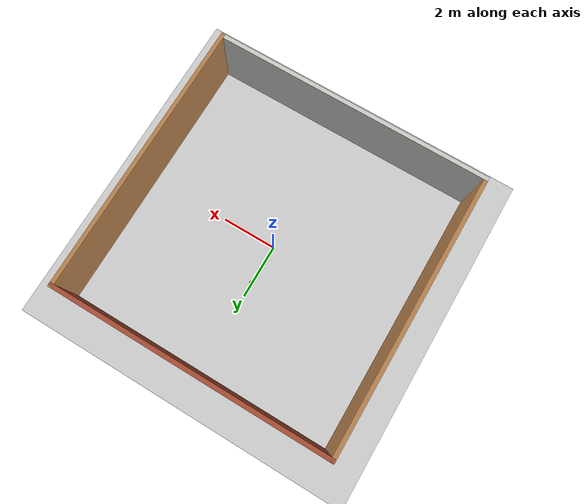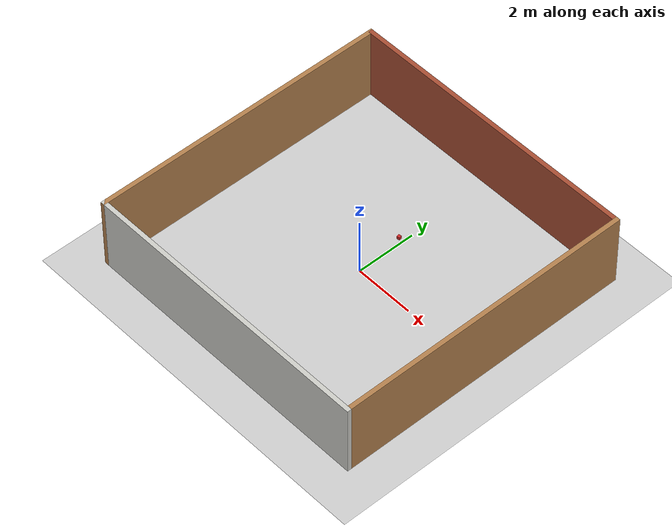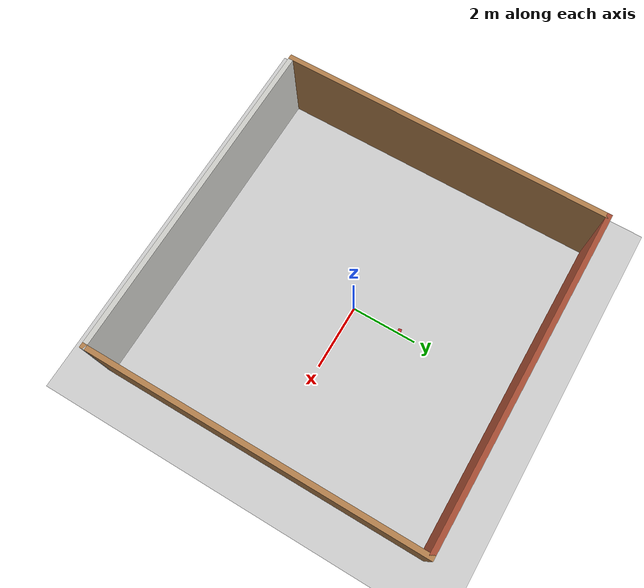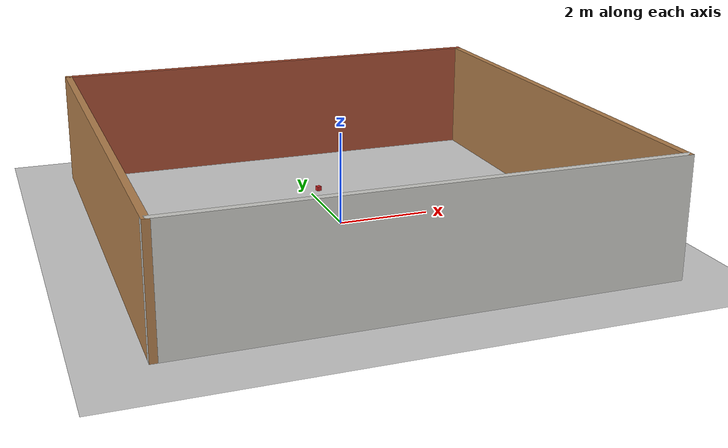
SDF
<?xml version="1.0"?>
<sdf version="1.6">

  <world name="camera_with_ros_plugin">

    <!-- Define the physics engine -->
    <physics name="default_physics" type="ode">
      <max_step_size>0.001</max_step_size>
      <real_time_factor>1</real_time_factor>
      <real_time_update_rate>1000</real_time_update_rate>
    </physics>

    <!-- Include a ground plane -->
    <include>
      <uri>model://ground_plane</uri>
    </include>

    <!-- Include a sun for lighting -->
    <include>
      <uri>model://sun</uri>
    </include>

    <!-- Include your walls model -->
    <include>
      <uri>model://walls</uri>
      <pose>0 0 0 0 0 0</pose> <!-- Adjust position and orientation as needed -->
    </include>

    <!-- Define a camera with libgazebo_ros_camera plugin -->
    <model name="ros_camera">
      <static>true</static>
      <pose>0 1.5 0.3 0.0 0.0 -1.39</pose> <!-- Position: x, y, z, and orientation: roll, pitch, yaw -->

      <link name="camera_link">
        <pose>0 0 0 0 0 0</pose>

        <!-- Visual representation of the camera -->
        <visual name="camera_visual">
          <geometry>
            <box>
              <size>0.1 0.1 0.1</size> <!-- Dimensions: 10 cm x 10 cm x 10 cm -->
            </box>
          </geometry>
          <material>
            <script>
              <uri>file://media/materials/scripts/gazebo.material</uri>
              <name>Gazebo/Red</name> <!-- Apply Gazebo red material -->
            </script>
          </material>
        </visual>

        <!-- Collision for the camera -->
        <collision name="camera_collision">
          <geometry>
            <box>
              <size>0.1 0.1 0.1</size> <!-- Dimensions for collision -->
            </box>
          </geometry>
        </collision>

        <!-- Sensor for the camera -->
        <sensor name="camera_sensor" type="camera">
          <pose>0 0 0 0 0 0</pose>

          <camera>
            <horizontal_fov>1.047</horizontal_fov>
            <image>
              <width>640</width>
              <height>480</height>
              <format>R8G8B8</format>
            </image>
            <clip>
              <near>0.1</near>
              <far>100</far>
            </clip>
          </camera>
          <always_on>true</always_on>
          <update_rate>10.0</update_rate>

          <!-- ROS plugin for the camera -->
          <plugin name="gazebo_ros_camera" filename="libgazebo_ros_camera.so">
            <alwaysOn>true</alwaysOn>
            <updateRate>10</updateRate>
            <cameraName>camera</cameraName>
            <imageTopicName>image_raw</imageTopicName>
            <cameraInfoTopicName>camera_info</cameraInfoTopicName>
            <frameName>camera_frame</frameName>
            <robotNamespace>/</robotNamespace>
          </plugin>
        </sensor>
      </link>
    </model>

  </world>
</sdf>

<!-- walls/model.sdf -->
<sdf version='1.7'>
  <model name='walls'>
    <pose>0 0 0 0 -0 0</pose>
    <link name='Wall_11'>
      <collision name='Wall_11_Collision'>
        <geometry>
          <box>
            <size>10.15 0.15 2.5</size>
          </box>
        </geometry>
        <pose>0 0 1.25 0 -0 0</pose>
      </collision>
      <visual name='Wall_11_Visual'>
        <pose>0 0 1.25 0 -0 0</pose>
        <geometry>
          <box>
            <size>10.15 0.15 2.5</size>
          </box>
        </geometry>
        <material>
          <script>
            <uri>file://media/materials/scripts/gazebo.material</uri>
            <name>Gazebo/Bricks</name>
          </script>
          <ambient>1 1 1 1</ambient>
        </material>
        <meta>
          <layer>0</layer>
        </meta>
      </visual>
      <pose>0 5 0 0 -0 0</pose>
    </link>
    <link name='Wall_13'>
      <collision name='Wall_13_Collision'>
        <geometry>
          <box>
            <size>10.15 0.15 2.5</size>
          </box>
        </geometry>
        <pose>0 0 1.25 0 -0 0</pose>
      </collision>
      <visual name='Wall_13_Visual'>
        <pose>0 0 1.25 0 -0 0</pose>
        <geometry>
          <box>
            <size>10.15 0.15 2.5</size>
          </box>
        </geometry>
        <material>
          <script>
            <uri>file://media/materials/scripts/gazebo.material</uri>
            <name>Gazebo/Wood</name>
          </script>
          <ambient>1 1 1 1</ambient>
        </material>
        <meta>
          <layer>0</layer>
        </meta>
      </visual>
      <pose>5 0 0 0 -0 -1.5708</pose>
    </link>
    <link name='Wall_15'>
      <collision name='Wall_15_Collision'>
        <geometry>
          <box>
            <size>10.15 0.15 2.5</size>
          </box>
        </geometry>
        <pose>0 0 1.25 0 -0 0</pose>
      </collision>
      <visual name='Wall_15_Visual'>
        <pose>0 0 1.25 0 -0 0</pose>
        <geometry>
          <box>
            <size>10.15 0.15 2.5</size>
          </box>
        </geometry>
        <material>
          <script>
            <uri>file://media/materials/scripts/gazebo.material</uri>
            <name>Gazebo/CeilingTiled</name>
          </script>
          <ambient>1 1 1 1</ambient>
        </material>
        <meta>
          <layer>0</layer>
        </meta>
      </visual>
      <pose>0 -5 0 0 -0 3.14159</pose>
    </link>
    <link name='Wall_17'>
      <collision name='Wall_17_Collision'>
        <geometry>
          <box>
            <size>10.15 0.15 2.5</size>
          </box>
        </geometry>
        <pose>0 0 1.25 0 -0 0</pose>
      </collision>
      <visual name='Wall_17_Visual'>
        <pose>0 0 1.25 0 -0 0</pose>
        <geometry>
          <box>
            <size>10.15 0.15 2.5</size>
          </box>
        </geometry>
        <material>
          <script>
            <uri>file://media/materials/scripts/gazebo.material</uri>
            <name>Gazebo/Wood</name>
          </script>
          <ambient>1 1 1 1</ambient>
        </material>
        <meta>
          <layer>0</layer>
        </meta>
      </visual>
      <pose>-5 0 0 0 -0 1.5708</pose>
    </link>
    <static>1</static>
  </model>
</sdf>
